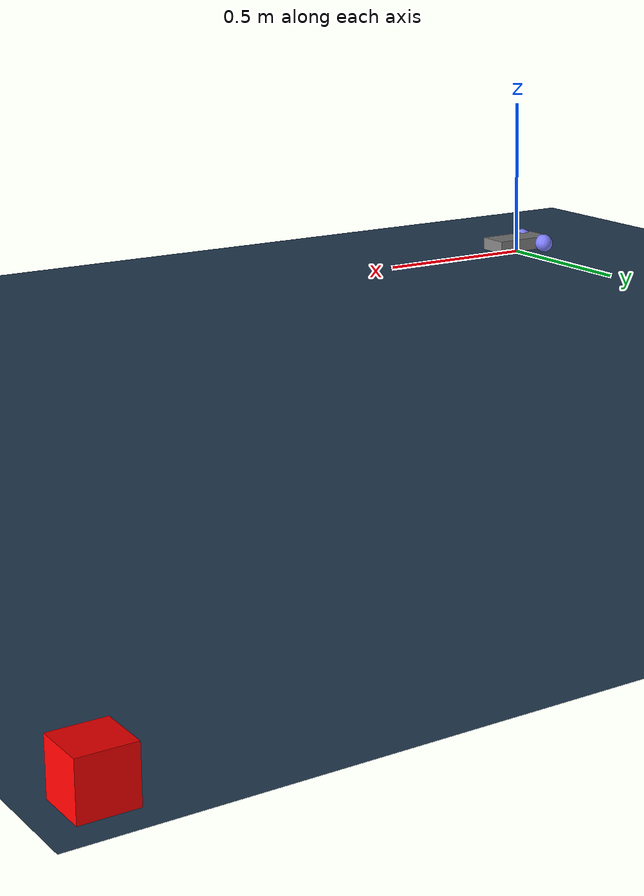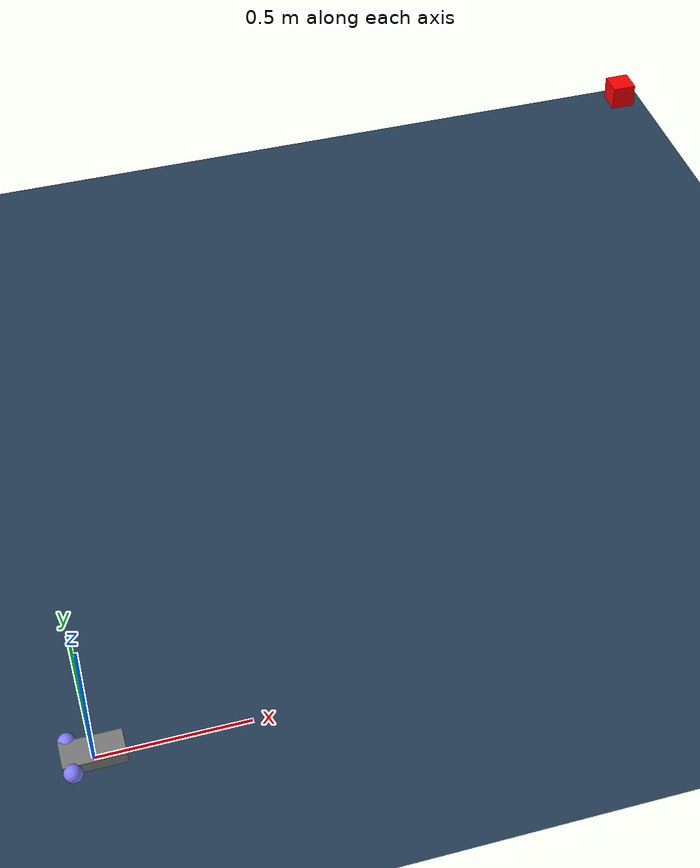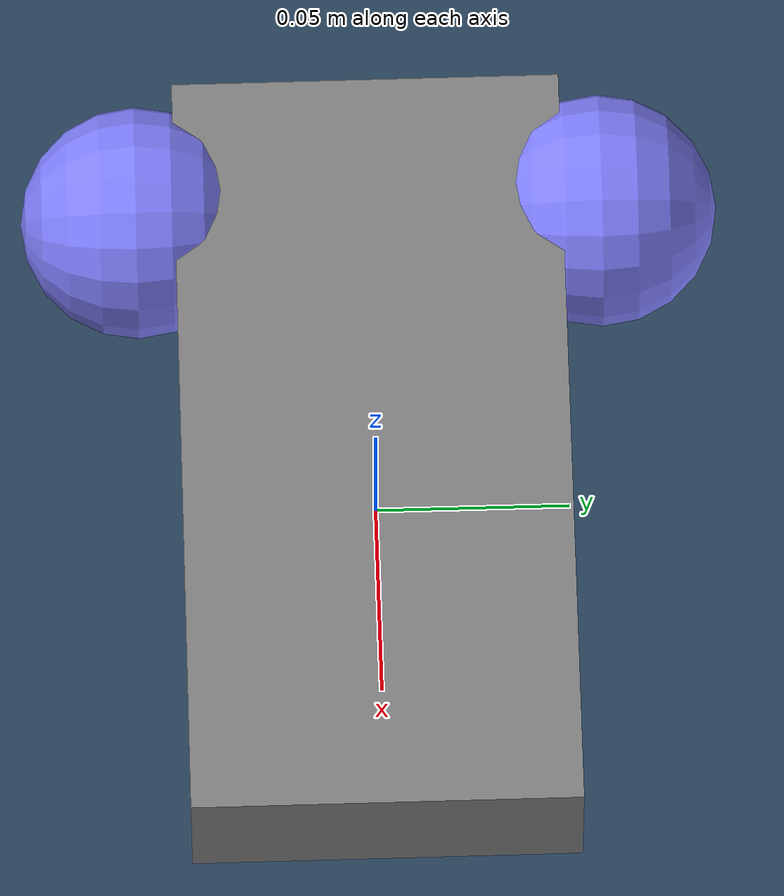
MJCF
<mujoco>
  <compiler autolimits="true"/>

  <asset>
    <texture name="grid" type="2d" builtin="checker" width="512" height="512" rgb1=".1 .2 .3" rgb2=".2 .3 .4"/>
    <material name="grid" texture="grid" texrepeat="1 1" texuniform="true" reflectance=".2"/>
  </asset>

  <default>
    <joint damping=".03" actuatorfrcrange="-0.5 0.5"/>
    <default class="wheel">
      <geom type="sphere" size=".03" rgba=".5 .5 1 1"/>
    </default>
    <default class="decor">
      <site type="box" rgba=".5 1 .5 1"/>
    </default>
  </default>

  <worldbody>
    <geom type="plane" size="3 3 .01" material="grid"/>
    <body name="car" pos="0 0 .03">
      <freejoint/>
      <light name="top light" pos="0 0 2" mode="trackcom" diffuse=".4 .4 .4"/>
      <geom name="chasis" type="box" size=".1 .05 .02"/>
      <geom name="front wheel" pos=".08 0 -.015" type="sphere" size=".015" condim="1" priority="1"/>
      <light name="front light" pos=".1 0 .02" dir="2 0 -1" diffuse="1 1 1"/>
      <camera name="front_camera" pos=".1 0 .02" xyaxes="0 -1 0 0 0 1" fovy="90"/>
      <body name="left wheel" pos="-.07 .06 0" zaxis="0 1 0">
        <joint name="left"/>
        <geom class="wheel"/>
        <site class="decor" size=".006 .025 .012"/>
        <site class="decor" size=".025 .006 .012"/>
      </body>
      <body name="right wheel" pos="-.07 -.06 0" zaxis="0 1 0">
        <joint name="right"/>
        <geom class="wheel"/>
        <site class="decor" size=".006 .025 .012"/>
        <site class="decor" size=".025 .006 .012"/>
      </body>
    </body>
    <body name="red_cube" pos="2.9 2.9 0.05">
      <geom type="box" size=".05 .05 .05" rgba="1 0 0 1"/>
    </body>
  </worldbody>

  <actuator>
      <motor name="drive_left" joint="left" ctrlrange="-1 1"/>
      <motor name="drive_right" joint="right" ctrlrange="-1 1"/>
  </actuator>

  <sensor>
    <jointactuatorfrc name="right" joint="right"/>
    <jointactuatorfrc name="left" joint="left"/>
  </sensor>
</mujoco>
